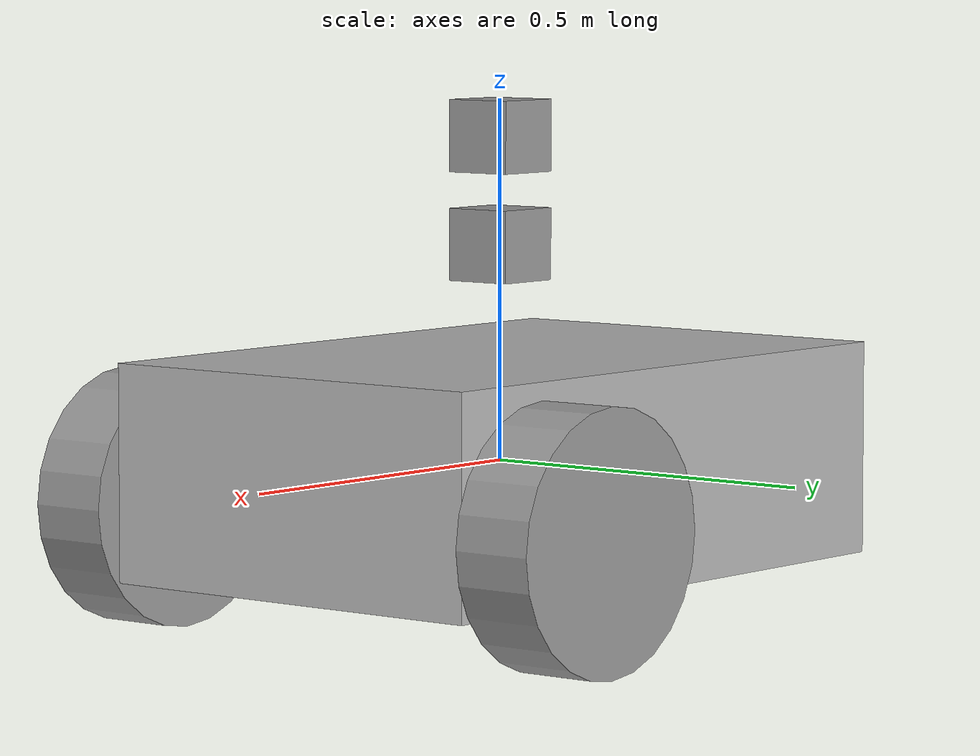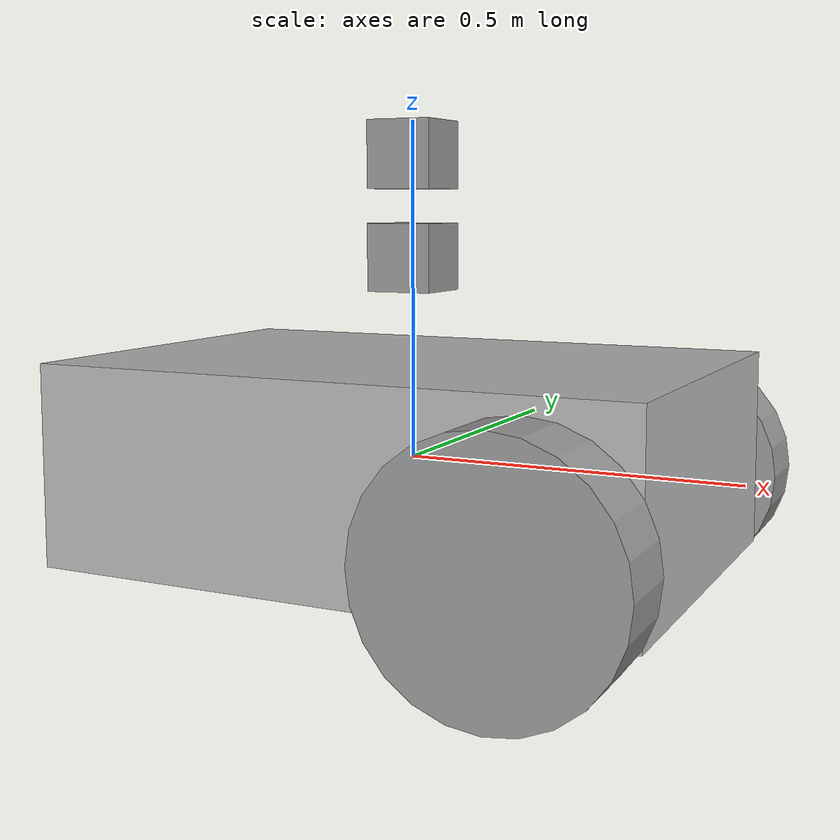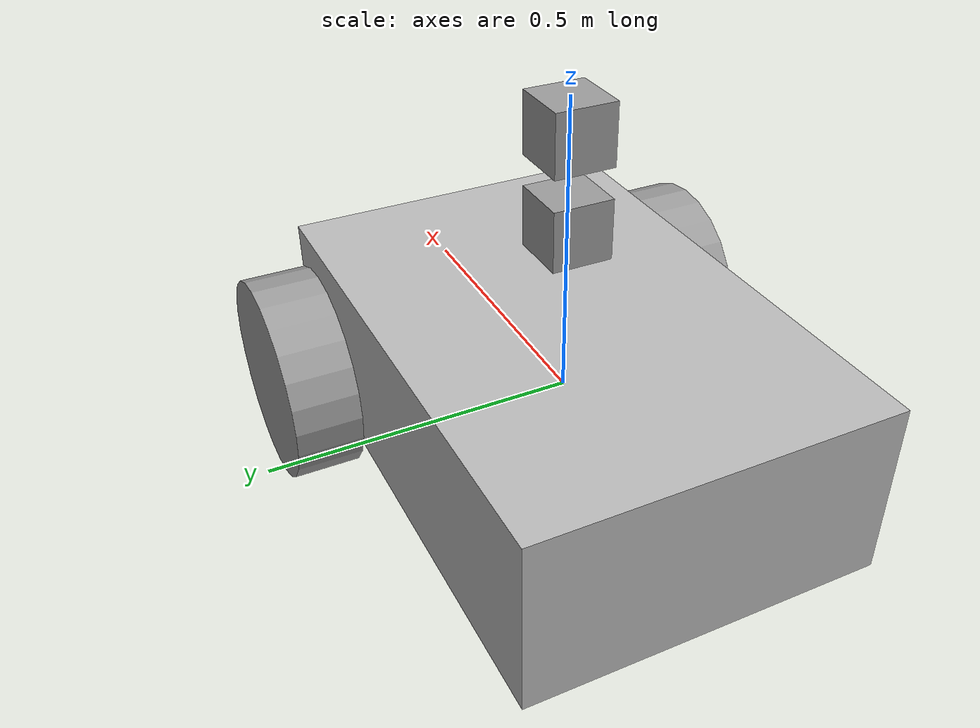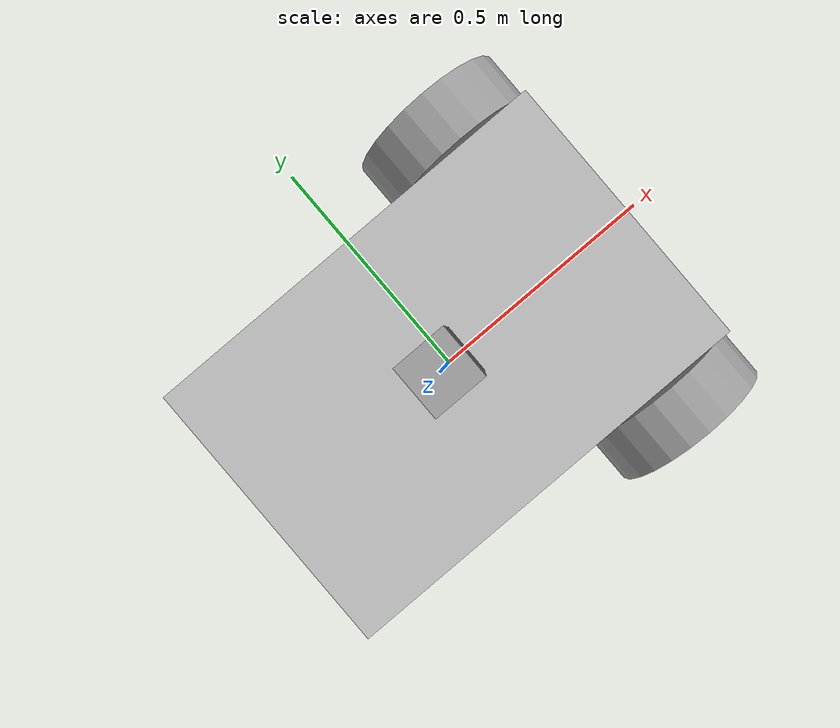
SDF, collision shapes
<?xml version='1.0'?>
<sdf version="1.5">
    <model name="bowser2">
        <pose>0 0 0 0 0 0</pose>
        <static>false</static>
        <link name="bowser2/base_link">
            <inertial>
                <mass>10</mass>
                <inertia> <!-- inertias are tricky to compute -->
                <!-- http://gazebosim.org/tutorials?tut=inertia&cat=build_robot -->
                <ixx>.3735</ixx>
                <ixy>0.0</ixy>            <!-- for a box: ixy = 0 -->
                <ixz>0.0</ixz>            <!-- for a box: ixz = 0 -->
                <iyy>.747</iyy>
                <iyz>0.0</iyz>            <!-- for a box: iyz = 0 -->
                <izz>.9711</izz>
                </inertia>
            </inertial>
            <!-- chassis -->
            <collision name="collision">
                <geometry>
                <box>
                    <size>.9 .6 .3</size>
                </box>
                </geometry>
            </collision>
            <visual name="visual">
                <geometry>
                <box>
                    <size>.9 .6 .3</size>
                </box>
                </geometry>
            </visual>
            <!-- caster -->
            <collision name='caster_collision'>
                <pose>-.35 0 -0.15 0 0 0</pose>
                <geometry>
                    <sphere>
                    <radius>.075</radius>
                </sphere>
                </geometry>
                <surface>
                <friction>
                    <ode>
                    <mu>0</mu>
                    <mu2>0</mu2>
                    <slip1>1.0</slip1>
                    <slip2>1.0</slip2>
                    </ode>
                </friction>
                </surface>
            </collision>
            <visual name='caster_visual'>
                <pose>-.35 0 -.15 0 0 0</pose>
                <geometry>
                <sphere>
                    <radius>.075</radius>
                </sphere>
                </geometry>
            </visual>
        </link>

        <link name="bowser2/front_right_wheel">
            <pose>0.3 -.37 -0.05 0 0 0</pose>
            <inertial>
                <mass>2.6357</mass>
                <pose>0 0 0 0 0 0</pose>
                <inertia>
                    <ixx>0.0246688</ixx>
                    <ixy>0</ixy>
                    <ixz>0</ixz>
                    <iyy>0.0246688</iyy>
                    <iyz>0</iyz>
                    <izz>0.0441058</izz>
                </inertia>
            </inertial>
            <collision name="front_right_wheel_collision">
                <pose>0 0 0 -1.5707 0 0</pose>
                <geometry>
                <cylinder>
                    <radius>0.17775</radius>
                    <length>0.1143</length>
                </cylinder>
                </geometry>
                <surface>
                <friction>
                    <ode>
                    <mu>100000.0</mu>
                    <mu2>100000.0</mu2>
                    <slip1>0.0</slip1>
                    <slip2>0.0</slip2>
                    </ode>
                </friction>
                </surface>
            </collision>
            <visual name="front_right_wheel">
                <pose>0 0 0 -3.14159 0 0</pose>
                <geometry>
                <mesh>
                    <uri>model://husky/meshes/wheel.stl</uri>
                </mesh>
                </geometry>
                <material>
                <script>
                    <name>Gazebo/Grey</name>
                </script>
                </material>
            </visual>
        </link>
        <joint name="bowser2/front_right_joint" type="revolute">
            <parent>bowser2/base_link</parent>
            <child>bowser2/front_right_wheel</child>
            <axis>
                <xyz>0 1 0</xyz>
                <use_parent_model_frame>true</use_parent_model_frame>
            </axis>
            <physics>
                <ode>
                <limit>
                    <cfm>0.000000</cfm>
                    <erp>0.900000</erp>
                </limit>
                </ode>
            </physics>
        </joint>

        <link name="bowser2/front_left_wheel">
            <pose>0.3 .37 -0.05 0 0 0</pose>
            <inertial>
                <mass>2.6357</mass>
                <pose>0 0 0 0 0 0</pose>
                <inertia>
                <ixx>0.0246688</ixx>
                <ixy>0</ixy>
                <ixz>0</ixz>
                <iyy>0.0246688</iyy>
                <iyz>0</iyz>
                <izz>0.0441058</izz>
                </inertia>
            </inertial>
            <collision name="front_left_wheel_collision">
                <pose>0 0 0 -1.5707 0 0</pose>
                <geometry>
                <cylinder>
                    <radius>0.17775</radius>
                    <length>0.1143</length>
                </cylinder>
                </geometry>
                <surface>
                <friction>
                    <ode>
                    <mu>100000.0</mu>
                    <mu2>100000.0</mu2>
                    <slip1>0.0</slip1>
                    <slip2>0.0</slip2>
                    </ode>
                </friction>
                </surface>
            </collision>
            <visual name="front_left_wheel">
                <pose>0 0 0 -3.14159 0 0</pose>
                <geometry>
                <mesh>
                    <uri>model://husky/meshes/wheel.stl</uri>
                </mesh>
                </geometry>
                <material>
                <script>
                    <name>Gazebo/Grey</name>
                </script>
                </material>
            </visual>
        </link>
        <joint name="bowser2/front_left_joint" type="revolute">
            <parent>bowser2/base_link</parent>
            <child>bowser2/front_left_wheel</child>
            <axis>
                <xyz>0 1 0</xyz>
                <use_parent_model_frame>true</use_parent_model_frame>
            </axis>
            <physics>
                <ode>
                <limit>
                    <cfm>0.000000</cfm>
                    <erp>0.900000</erp>
                </limit>
                </ode>
            </physics>
        </joint>

        <!-- IMU sensor -->
        <link name="bowser2/imu_link">
            <visual name="imu_link_visual">
                <geometry>
                    <box>
                        <size> 0.1 0.1 0.1 </size>
                    </box>
                </geometry>
            </visual>
            <collision name="imu_link_collision">
                <geometry>
                    <box>
                        <size> 0.1 0.1 0.1 </size>
                    </box>
                </geometry>
            </collision>

            <sensor name="imu_sensor" type="imu">
                <always_on>true</always_on> <!-- required TRUE -->
                <plugin filename="libgazebo_ros_imu_sensor.so" name="imu_plugin">
                    <robotNamespace>bowser2</robotNamespace>
                    <topicName>imu</topicName>
                    <updateRateHZ>30</updateRateHZ>
                    <frameName>bowser2/imu_link</frameName>
                    <initialOrientationAsReference>false</initialOrientationAsReference>
                </plugin>
            </sensor>
        </link>
        <joint name="bowser2/imu_joint" type="fixed">
            <parent>bowser2/base_link</parent>
            <child>bowser2/imu_link</child>
        </joint>

        <!-- differential drive plugin; publishes odom frame-->
        <plugin filename="libgazebo_ros_diff_drive.so" name="diff_drive_controller">
            <robotNamespace>bowser2</robotNamespace>
            <rosDebugLevel>debug</rosDebugLevel>

            <!-- 'physical' characteristics -->
            <leftJoint>bowser2/front_left_joint</leftJoint>
            <rightJoint>bowser2/front_right_joint</rightJoint>
            <wheelSeparation>0.74</wheelSeparation>
            <wheelDiameter>0.3555</wheelDiameter>
            <wheelTorque>20</wheelTorque>   <!-- in Nm -->

            <!-- plugin characteristics -->
            <odometrySource>world</odometrySource>
            <publishOdom>true</publishOdom>
            <updateRate>100</updateRate>

            <!-- tf -->
            <publishTf>true</publishTf> <!-- publish the transforms -->
            <publishOdomTF>true</publishOdomTF>
            <publishWheelTF>false</publishWheelTF>
            <odometryFrame>bowser2/odom</odometryFrame>
            <robotBaseFrame>bowser2/base_link</robotBaseFrame>

            <!-- ros messaging -->
            <commandTopic>/cmd_vel</commandTopic> <!-- listens to -->
            <odometryTopic>odom</odometryTopic> <!-- publishes on -->
        </plugin>

        <joint name="bowser2/camera_joint" type="fixed">
            <parent>bowser2/base_link</parent>
            <child>bowser2/camera_link</child>
            <axis>
                <xyz>1 0 0</xyz>
                <use_parent_model_frame>true</use_parent_model_frame>
            </axis>
        </joint>
        <!-- houses the depth camera sensor -->
        <link name="bowser2/camera_link">
            <!-- "physical" description of camera -->
            <pose>0 0 0.35 0 0 0</pose>
            <collision name="camera_collision">
                <pose>0 0 0.1 0 0 0</pose>
                <geometry>
                    <box>
                    <size>.1 0.1 0.1</size>
                    </box>
                </geometry>
            </collision>
            <visual name="camera_visual">
                <pose>0 0 0 0 0 0</pose>
                <geometry>
                    <box>
                    <size>.1 0.1 0.1</size>
                    </box>
                </geometry>
                <material>
                    <script>
                    <name>Gazebo/Grey</name>
                    </script>
                </material>
            </visual>

            <sensor type="depth" name="depth_sensor">
                <!-- Set always_on only sensor, not on plugin -->
                <always_on>0</always_on>
                <!-- Set update_rate only sensor, not on plugin -->
                <updateRate>20</updateRate>

                <camera name="bowser2_dc">
                    <horizontal_fov>1.57079</horizontal_fov>
                    <image>
                        <width>640</width>
                        <height>480</height>
                    </image>
                    <clip>
                        <near>0.5</near>
                        <far>25</far>
                    </clip>
                    <!-- no distortions: "ideal" camera -->
                    <distortion>
                        <k1>0.0</k1>
                        <k2>0.0</k2>
                        <k3>0.0</k3>
                        <p1>0.0</p1>
                        <p2>0.0</p2>
                        <center>0.0 0.0</center>
                    </distortion>
                </camera>

                <plugin name="bowser2_camera_plugin" filename="libgazebo_ros_depth_camera.so">
                    <robotNamespace>bowser2</robotNamespace>
                    <always_on>true</always_on>
                    <updateRate>0.0</updateRate> <!-- use sensor rate -->
                    <cameraName>bowser2_dc</cameraName>

                    <baseline>0.05</baseline>
                    <pointCloudCutoff>0.05</pointCloudCutoff>
                    <pointCloudCutoffMax>20</pointCloudCutoffMax>

                    <!-- configure output topics; will be prepended with robotNamespace value (AKA relative names) -->
                    <imageTopicName>image/image</imageTopicName>
                    <cameraInfoTopicName>image/camera_info</cameraInfoTopicName>
                    <depthImageTopicName>depth/image</depthImageTopicName>
                    <depthImageCameraInfoTopicName>depth/camera_info</depthImageCameraInfoTopicName>
                    <pointCloudTopicName>depth/points</pointCloudTopicName>

                    <!-- Set TF frame name. If empty, defaults to link name (i.e. "link_name") -->
                    <frameName>bowser2/camera_link</frameName> <!-- namespaced -->

                    <distortionK1>0.0</distortionK1>
                    <distortionK2>0.0</distortionK2>
                    <distortionK3>0.0</distortionK3>
                    <distortionT1>0.0</distortionT1>
                    <distortionT2>0.0</distortionT2>
                </plugin>
            </sensor>
        </link>

        <!-- http://wiki.ros.org/hector_gazebo_plugins#GazeboRosGps -->
        <plugin name="gps_controller" filename="libhector_gazebo_ros_gps.so">
            <alwaysOn>true</alwaysOn>
            <rosDebugLevel>debug</rosDebugLevel>
            <updateRate>1.0</updateRate>
            <bodyName>bowser2/base_link</bodyName>
            <topicName>/fix</topicName> <!-- output topic-->
            <velocityTopicName>/fix_velocity</velocityTopicName>
            <drift>5.0 5.0 5.0</drift>
            <gaussianNoise>0.1 0.1 0.1</gaussianNoise>
            <velocityDrift>0 0 0</velocityDrift>
            <velocityGaussianNoise>0.1 0.1 0.1</velocityGaussianNoise>
            <frameId>map</frameId>

            <!-- references -->
        </plugin>

        <joint name="bowser2/lidar_joint" type="fixed">
            <parent>bowser2/base_link</parent>
            <child>bowser2/lidar_link</child>
            <axis>
                <xyz>0 1 0</xyz>
                <use_parent_model_frame>true</use_parent_model_frame>
            </axis>
        </joint>
        <link name="bowser2/lidar_link">
            <!-- "physical" description of lidar -->
            <pose>0.0 0 0.2 0 0 0</pose>
            <collision name="lidar_collision">
                <pose>0 0 0.1 0 0 0</pose>
                <geometry>
                    <box>
                        <size>.1 0.1 0.1</size>
                    </box>
                </geometry>
            </collision>
            <visual name="lidar_visual">
                <pose>0 0 0 0 0 0</pose>
                <geometry>
                    <box>
                        <size>.1 0.1 0.1</size>
                    </box>
                </geometry>
                <material>
                    <script>
                        <name>Gazebo/Grey</name>
                    </script>
                </material>
            </visual>

            <!-- LiDAR -->
            <sensor name="laser_sensor" type="ray">
                <ray>
                    <scan>
                        <horizontal>
                            <samples>1875</samples>
                            <resolution>1</resolution>
                            <min_angle>-3.14159</min_angle>
                            <max_angle>3.14159</max_angle>
                        </horizontal>
                        <vertical>
                	     <samples>16</samples>
                		<resolution>1</resolution>
                		<min_angle>-0.2618</min_angle>
                		<max_angle>0.2618</max_angle>
              		</vertical>
                    </scan>
                    <range>
                        <min>0.9</min>
                        <max>130</max>
                        <resolution>0.01</resolution>
                    </range>
                    <noise>
              		<type>gaussian</type>
              		<mean>0.0</mean>
              		<stddev>0.0</stddev>
            	    </noise>
                </ray>

                <!-- visualizing sensor rays can be resource intensive -->
                <visualize>false</visualize>

                <plugin name="laser_plugin" filename="libgazebo_ros_velodyne_laser.so">
            		<topicName>/velodyne</topicName>
            		<frameName>bowser2/lidar_link</frameName>
            		<organize_cloud>false</organize_cloud>
            		<min_range>0.9</min_range>
            		<max_range>130</max_range>
            		<gaussianNoise>.008</gaussianNoise>
         	 </plugin>

            </sensor>
        </link>
    </model>
</sdf>
